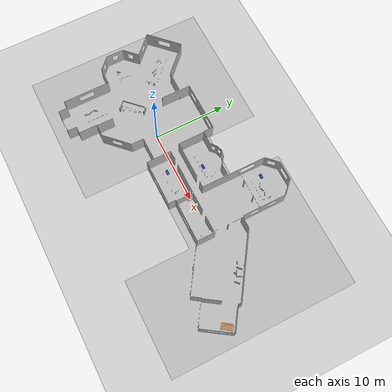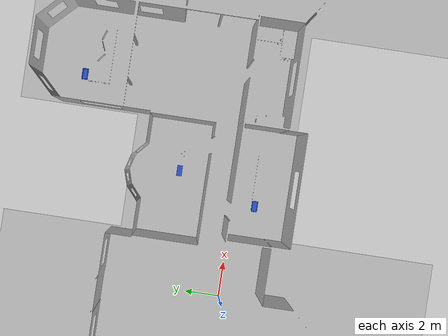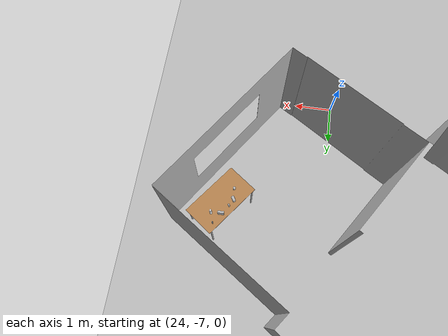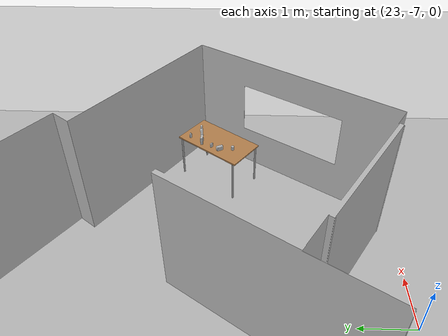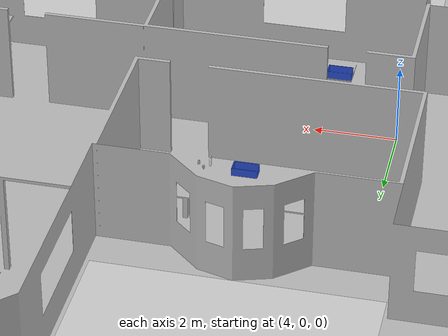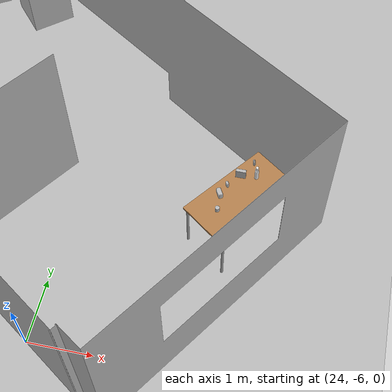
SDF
<sdf version="1.6">
 <world name="default">
  <scene><shadows>0</shadows><ambient>0.4 0.4 0.4 1</ambient><background>0.7 0.7 0.7 1</background></scene>
  <plugin name="ros_link_attacher_plugin" filename="libgazebo_ros_link_attacher.so"/>
  <light name="sun" type="directional">
   <pose>0 0 10 0 -0 0</pose>
   <diffuse>0.8 0.8 0.8 1</diffuse>
   <specular>0.2 0.2 0.2 1</specular>
   <attenuation>
    <range>1000</range>
    <constant>0.9</constant>
    <linear>0.01</linear>
    <quadratic>0.001</quadratic>
   </attenuation>
   <direction>-0.5 0.1 -0.9</direction>
  </light>
  <model name="ground_plane">
   <static>1</static>
   <link name="link">
    <collision name="collision">
     <geometry><plane><normal>0 0 1</normal><size>100 100</size></plane></geometry>
     <surface>
      <contact><collide_bitmask>65535</collide_bitmask></contact>
      <friction><ode><mu>100</mu><mu2>50</mu2></ode></friction>
     </surface>
    </collision>
    <visual name="visual">
     <cast_shadows>0</cast_shadows>
     <geometry><plane><normal>0 0 1</normal><size>100 100</size></plane></geometry>
     <material>
      <script><uri>file://media/materials/scripts/gazebo.material</uri><name>Gazebo/Grey</name></script>
     </material>
    </visual>
   </link>
  </model>
  <model name="office">
   <static>1</static>
   <link name="link">
    <collision name="colision1">
     <geometry><mesh><uri>model://office/meshes/SB_fixed.obj</uri></mesh></geometry>
    </collision>
    <visual name="visual1">
     <geometry><mesh><uri>model://office/meshes/SB_fixed.obj</uri></mesh></geometry>
    </visual>
   </link>
   <pose>0 0 0.08 0 -0 0</pose>
  </model>
  <model name="DropBox2">
   <link name="link_0">
    <pose>0 -0 0 0 0 -1.56873</pose>
    <inertial>
     <mass>1</mass>
     <inertia>
      <ixx>0.166667</ixx>
      <ixy>0</ixy>
      <ixz>0</ixz>
      <iyy>0.166667</iyy>
      <iyz>0</iyz>
      <izz>0.166667</izz>
     </inertia>
    </inertial>
    <visual name="visual">
     <geometry><mesh><uri>model://dropbox/meshes/dropbox.dae</uri><scale>1 1 1</scale></mesh></geometry>
     <material>
      <lighting>1</lighting>
      <script><uri>file://media/materials/scripts/gazebo.material</uri><name>Gazebo/Blue</name></script>
      <ambient>0.3 0.3 0.3 1</ambient>
      <diffuse>0.7 0.7 0.7 1</diffuse>
      <specular>0.01 0.01 0.01 1</specular>
      <emissive>0 0 1 1</emissive>
     </material>
    </visual>
    <collision name="collision">
     <geometry><mesh><uri>model://dropbox/meshes/dropbox.dae</uri><scale>1 1 1</scale></mesh></geometry>
     <surface>
      <friction>
       <ode><mu>1</mu><mu2>1</mu2><fdir1>0 0 0</fdir1><slip1>0</slip1><slip2>0</slip2></ode>
       <torsional>
        <coefficient>1</coefficient>
        <patch_radius>0</patch_radius>
        <surface_radius>0</surface_radius>
        <use_patch_radius>1</use_patch_radius>
        <ode><slip>0</slip></ode>
       </torsional>
      </friction>
      <bounce><restitution_coefficient>0</restitution_coefficient><threshold>1e+06</threshold></bounce>
      <contact>
       <collide_without_contact>0</collide_without_contact>
       <collide_without_contact_bitmask>1</collide_without_contact_bitmask>
       <collide_bitmask>1</collide_bitmask>
       <ode>
        <soft_cfm>0</soft_cfm>
        <soft_erp>0.2</soft_erp>
        <kp>1e+13</kp>
        <kd>1</kd>
        <max_vel>0.01</max_vel>
        <min_depth>0</min_depth>
       </ode>
       <bullet>
        <split_impulse>1</split_impulse>
        <split_impulse_penetration_threshold>-0.01</split_impulse_penetration_threshold>
        <soft_cfm>0</soft_cfm>
        <soft_erp>0.2</soft_erp>
        <kp>1e+13</kp>
        <kd>1</kd>
       </bullet>
      </contact>
     </surface>
    </collision>
   </link>
   <static>1</static>
   <pose>6.99 3.37 0.87 0 -0 0</pose>
  </model>
  <model name="DropBox1">
   <link name="link_0">
    <pose>0 -0 0 0 0 -1.56873</pose>
    <inertial>
     <mass>1</mass>
     <inertia>
      <ixx>0.166667</ixx>
      <ixy>0</ixy>
      <ixz>0</ixz>
      <iyy>0.166667</iyy>
      <iyz>0</iyz>
      <izz>0.166667</izz>
     </inertia>
    </inertial>
    <visual name="visual">
     <geometry><mesh><uri>model://dropbox/meshes/dropbox.dae</uri><scale>1 1 1</scale></mesh></geometry>
     <material>
      <lighting>1</lighting>
      <script><uri>file://media/materials/scripts/gazebo.material</uri><name>Gazebo/Blue</name></script>
      <ambient>0.3 0.3 0.3 1</ambient>
      <diffuse>0.7 0.7 0.7 1</diffuse>
      <specular>0.01 0.01 0.01 1</specular>
      <emissive>0 0 1 1</emissive>
     </material>
    </visual>
    <collision name="collision">
     <geometry><mesh><uri>model://dropbox/meshes/dropbox.dae</uri><scale>1 1 1</scale></mesh></geometry>
     <surface>
      <friction>
       <ode><mu>1</mu><mu2>1</mu2><fdir1>0 0 0</fdir1><slip1>0</slip1><slip2>0</slip2></ode>
       <torsional>
        <coefficient>1</coefficient>
        <patch_radius>0</patch_radius>
        <surface_radius>0</surface_radius>
        <use_patch_radius>1</use_patch_radius>
        <ode><slip>0</slip></ode>
       </torsional>
      </friction>
      <bounce><restitution_coefficient>0</restitution_coefficient><threshold>1e+06</threshold></bounce>
      <contact>
       <collide_without_contact>0</collide_without_contact>
       <collide_without_contact_bitmask>1</collide_without_contact_bitmask>
       <collide_bitmask>1</collide_bitmask>
       <ode>
        <soft_cfm>0</soft_cfm>
        <soft_erp>0.2</soft_erp>
        <kp>1e+13</kp>
        <kd>1</kd>
        <max_vel>0.01</max_vel>
        <min_depth>0</min_depth>
       </ode>
       <bullet>
        <split_impulse>1</split_impulse>
        <split_impulse_penetration_threshold>-0.01</split_impulse_penetration_threshold>
        <soft_cfm>0</soft_cfm>
        <soft_erp>0.2</soft_erp>
        <kp>1e+13</kp>
        <kd>1</kd>
       </bullet>
      </contact>
     </surface>
    </collision>
   </link>
   <static>1</static>
   <pose>5.61 -1.16 0.87 0 -0 0</pose>
  </model>
  <model name="DropBox3">
   <link name="link_0">
    <pose>0 -0 0 0 0 -1.56873</pose>
    <inertial>
     <mass>1</mass>
     <inertia>
      <ixx>0.166667</ixx>
      <ixy>0</ixy>
      <ixz>0</ixz>
      <iyy>0.166667</iyy>
      <iyz>0</iyz>
      <izz>0.166667</izz>
     </inertia>
    </inertial>
    <visual name="visual">
     <geometry><mesh><uri>model://dropbox/meshes/dropbox.dae</uri><scale>1 1 1</scale></mesh></geometry>
     <material>
      <lighting>1</lighting>
      <script><uri>file://media/materials/scripts/gazebo.material</uri><name>Gazebo/Blue</name></script>
      <ambient>0.3 0.3 0.3 1</ambient>
      <diffuse>0.7 0.7 0.7 1</diffuse>
      <specular>0.01 0.01 0.01 1</specular>
      <emissive>0 0 1 1</emissive>
     </material>
    </visual>
    <collision name="collision">
     <geometry><mesh><uri>model://dropbox/meshes/dropbox.dae</uri><scale>1 1 1</scale></mesh></geometry>
     <surface>
      <friction>
       <ode><mu>1</mu><mu2>1</mu2><fdir1>0 0 0</fdir1><slip1>0</slip1><slip2>0</slip2></ode>
       <torsional>
        <coefficient>1</coefficient>
        <patch_radius>0</patch_radius>
        <surface_radius>0</surface_radius>
        <use_patch_radius>1</use_patch_radius>
        <ode><slip>0</slip></ode>
       </torsional>
      </friction>
      <bounce><restitution_coefficient>0</restitution_coefficient><threshold>1e+06</threshold></bounce>
      <contact>
       <collide_without_contact>0</collide_without_contact>
       <collide_without_contact_bitmask>1</collide_without_contact_bitmask>
       <collide_bitmask>1</collide_bitmask>
       <ode>
        <soft_cfm>0</soft_cfm>
        <soft_erp>0.2</soft_erp>
        <kp>1e+13</kp>
        <kd>1</kd>
        <max_vel>0.01</max_vel>
        <min_depth>0</min_depth>
       </ode>
       <bullet>
        <split_impulse>1</split_impulse>
        <split_impulse_penetration_threshold>-0.01</split_impulse_penetration_threshold>
        <soft_cfm>0</soft_cfm>
        <soft_erp>0.2</soft_erp>
        <kp>1e+13</kp>
        <kd>1</kd>
       </bullet>
      </contact>
     </surface>
    </collision>
   </link>
   <static>1</static>
   <pose>11.64 9.51 0.87 0 -0 0</pose>
  </model>
  <model name="table">
   <static>1</static>
   <link name="link">
    <collision name="surface">
     <pose>0 0 1 0 -0 0</pose>
     <geometry><box><size>1.5 0.8 0.03</size></box></geometry>
     <surface><friction><ode><mu>0.6</mu><mu2>0.6</mu2></ode></friction></surface>
    </collision>
    <visual name="visual1">
     <pose>0 0 1 0 -0 0</pose>
     <geometry><box><size>1.5 0.8 0.03</size></box></geometry>
     <material>
      <script><uri>file://media/materials/scripts/gazebo.material</uri><name>Gazebo/Wood</name></script>
     </material>
    </visual>
    <collision name="front_left_leg">
     <pose>0.68 0.38 0.5 0 -0 0</pose>
     <geometry><cylinder><radius>0.02</radius><length>1</length></cylinder></geometry>
    </collision>
    <visual name="front_left_leg">
     <pose>0.68 0.38 0.5 0 -0 0</pose>
     <geometry><cylinder><radius>0.02</radius><length>1</length></cylinder></geometry>
     <material>
      <script><uri>file://media/materials/scripts/gazebo.material</uri><name>Gazebo/Grey</name></script>
     </material>
    </visual>
    <collision name="front_right_leg">
     <pose>0.68 -0.38 0.5 0 -0 0</pose>
     <geometry><cylinder><radius>0.02</radius><length>1</length></cylinder></geometry>
    </collision>
    <visual name="front_right_leg">
     <pose>0.68 -0.38 0.5 0 -0 0</pose>
     <geometry><cylinder><radius>0.02</radius><length>1</length></cylinder></geometry>
     <material>
      <script><uri>file://media/materials/scripts/gazebo.material</uri><name>Gazebo/Grey</name></script>
     </material>
    </visual>
    <collision name="back_right_leg">
     <pose>-0.68 -0.38 0.5 0 -0 0</pose>
     <geometry><cylinder><radius>0.02</radius><length>1</length></cylinder></geometry>
    </collision>
    <visual name="back_right_leg">
     <pose>-0.68 -0.38 0.5 0 -0 0</pose>
     <geometry><cylinder><radius>0.02</radius><length>1</length></cylinder></geometry>
     <material>
      <script><uri>file://media/materials/scripts/gazebo.material</uri><name>Gazebo/Grey</name></script>
     </material>
    </visual>
    <collision name="back_left_leg">
     <pose>-0.68 0.38 0.5 0 -0 0</pose>
     <geometry><cylinder><radius>0.02</radius><length>1</length></cylinder></geometry>
    </collision>
    <visual name="back_left_leg">
     <pose>-0.68 0.38 0.5 0 -0 0</pose>
     <geometry><cylinder><radius>0.02</radius><length>1</length></cylinder></geometry>
     <material>
      <script><uri>file://media/materials/scripts/gazebo.material</uri><name>Gazebo/Grey</name></script>
     </material>
    </visual>
   </link>
   <pose>26.608 -3.569 0 0 -0 0.934</pose>
  </model>
  <gravity>0 0 -9.8</gravity>
  <magnetic_field>6e-06 2.3e-05 -4.2e-05</magnetic_field>
  <atmosphere type="adiabatic"/>
  <physics name="default_physics" default="0" type="ode">
   <max_step_size>0.001</max_step_size>
   <real_time_factor>1</real_time_factor>
   <real_time_update_rate>1000</real_time_update_rate>
  </physics>
  <audio><device>default</device></audio>
  <spherical_coordinates>
   <surface_model>EARTH_WGS84</surface_model>
   <latitude_deg>0</latitude_deg>
   <longitude_deg>0</longitude_deg>
   <elevation>0</elevation>
   <heading_deg>0</heading_deg>
  </spherical_coordinates>
  <model name="coke_can">
   <link name="link">
    <inertial>
     <pose>0 0 0.06 0 -0 0</pose>
     <mass>0.39</mass>
     <inertia>
      <ixx>0.00055575</ixx>
      <ixy>0</ixy>
      <ixz>0</ixz>
      <iyy>0.00055575</iyy>
      <iyz>0</iyz>
      <izz>0.0001755</izz>
     </inertia>
    </inertial>
    <collision name="collision">
     <pose>0.003937 0.004724 -0.18 0 -0 0</pose>
     <geometry><mesh><uri>model://coke_can/meshes/coke_can.dae</uri></mesh></geometry>
     <surface>
      <friction><ode><mu>1</mu><mu2>1</mu2></ode></friction>
      <contact><ode><kp>1e+07</kp><kd>1</kd><min_depth>0.001</min_depth><max_vel>0.1</max_vel></ode></contact>
     </surface>
    </collision>
    <visual name="visual">
     <pose>0.003937 0.004724 -0.18 0 -0 0</pose>
     <geometry><mesh><uri>model://coke_can/meshes/coke_can.dae</uri></mesh></geometry>
    </visual>
   </link>
   <pose>10.82 -1.04507 0.867682 -0.028937 0.000564 6.5e-05</pose>
  </model>
  <model name="water_glass">
   <link name="link">
    <inertial>
     <mass>0.8</mass>
     <inertia><ixx>1</ixx><ixy>0</ixy><ixz>0</ixz><iyy>1</iyy><iyz>0</iyz><izz>1</izz></inertia>
    </inertial>
    <collision name="colision1">
     <geometry><mesh><uri>model://water_glass/meshes/glass.dae</uri></mesh></geometry>
    </collision>
    <visual name="visual1">
     <cast_shadows>0</cast_shadows>
     <geometry><mesh><uri>model://water_glass/meshes/glass.dae</uri></mesh></geometry>
     <material>
      <script><name>Gazebo/GreyTransparent</name><uri>file://media/materials/scripts/gazebo.material</uri></script>
     </material>
    </visual>
   </link>
   <pose>15.22 -1.23 0.870491 4e-06 -1e-06 0</pose>
  </model>
  <model name="adhesive">
   <link name="link">
    <inertial>
     <mass>0.08</mass>
     <inertia><ixx>1</ixx><ixy>0</ixy><ixz>0</ixz><iyy>1</iyy><iyz>0</iyz><izz>1</izz></inertia>
    </inertial>
    <collision name="colision1">
     <geometry><mesh><uri>model://adhesive/meshes/adhesive.dae</uri></mesh></geometry>
    </collision>
    <visual name="visual1">
     <cast_shadows>0</cast_shadows>
     <geometry><mesh><uri>model://adhesive/meshes/adhesive.dae</uri></mesh></geometry>
     <material>
      <script><name>Gazebo/White</name><uri>file://media/materials/scripts/gazebo.material</uri></script>
     </material>
    </visual>
   </link>
   <pose>26.78 -3.21 1.17 5e-06 -6e-06 0</pose>
  </model>
  <model name="glue">
   <link name="glue_link">
    <inertial>
     <mass>0.08</mass>
     <inertia><ixx>1</ixx><ixy>0</ixy><ixz>0</ixz><iyy>1</iyy><iyz>0</iyz><izz>1</izz></inertia>
    </inertial>
    <visual name="glue_visual">
     <material>
      <script>
       <uri>model://glue/materials/scripts</uri>
       <uri>model://glue/materials/textures</uri>
       <name>glue</name>
      </script>
     </material>
     <geometry><mesh><uri>model://glue/meshes/glue.dae</uri></mesh></geometry>
    </visual>
    <collision name="glue_collision">
     <pose>0 0.001 0.067 0 0 -0.95</pose>
     <geometry><box><size>0.06 0.032 0.133</size></box></geometry>
    </collision>
   </link>
   <pose>26.7 -2.984 1.0145 9.8e-05 -4.2e-05 0</pose>
  </model>
  <model name="battery">
   <link name="soap2_link">
    <inertial>
     <mass>0.08</mass>
     <inertia><ixx>1</ixx><ixy>0</ixy><ixz>0</ixz><iyy>1</iyy><iyz>0</iyz><izz>1</izz></inertia>
    </inertial>
    <visual name="soap2_visual">
     <material>
      <script>
       <uri>model://soap2/materials/scripts</uri>
       <uri>model://soap2/materials/textures</uri>
       <name>soap2</name>
      </script>
     </material>
     <geometry><mesh><uri>model://soap2/meshes/soap2.dae</uri></mesh></geometry>
    </visual>
    <collision name="soap2_collision">
     <pose>-0.002 0.00502 0.05 0 0 -1</pose>
     <geometry><box><size>0.065 0.04 0.105</size></box></geometry>
    </collision>
   </link>
   <pose>26.395 -3.45 1.01751 -0.000145 -0.000182 0</pose>
  </model>
  <model name="FPGA_board">
   <link name="soap_link">
    <inertial>
     <mass>0.08</mass>
     <inertia><ixx>1</ixx><ixy>0</ixy><ixz>0</ixz><iyy>1</iyy><iyz>0</iyz><izz>1</izz></inertia>
    </inertial>
    <visual name="soap_visual">
     <material>
      <script>
       <uri>model://soap/materials/scripts</uri>
       <uri>model://soap/materials/textures</uri>
       <name>soap</name>
      </script>
     </material>
     <geometry><mesh><uri>model://soap/meshes/soap.dae</uri></mesh></geometry>
    </visual>
    <collision name="soap_collision">
     <pose>0.02 0.002 0.05 0 0 -1.05</pose>
     <geometry><box><size>0.14 0.065 0.1</size></box></geometry>
    </collision>
   </link>
   <pose>26.29 -3.613 1.01504 0.000438 0.000235 0</pose>
  </model>
  <model name="robot_wheels">
   <link name="link">
    <collision name="colision1">
     <geometry><mesh><uri>model://robot_wheels/meshes/robot_wheels.dae</uri></mesh></geometry>
    </collision>
    <visual name="visual1">
     <cast_shadows>0</cast_shadows>
     <geometry><mesh><uri>model://robot_wheels/meshes/robot_wheels.dae</uri></mesh></geometry>
    </visual>
    <inertial>
     <inertia><ixx>1</ixx><ixy>0</ixy><ixz>0</ixz><iyy>1</iyy><iyz>0</iyz><izz>1</izz></inertia>
     <mass>1</mass>
    </inertial>
   </link>
   <pose>26.33 -3.88014 1.05311 0.003677 -0.000246 2.3e-05</pose>
  </model>
  <model name="eYFi_board">
   <static>0</static>
   <link name="link">
    <collision name="colision1">
     <geometry><mesh><uri>model://eYIFI/meshes/eyifi.obj</uri></mesh></geometry>
    </collision>
    <visual name="visual1">
     <cast_shadows>0</cast_shadows>
     <geometry><mesh><uri>model://eYIFI/meshes/eyifi.obj</uri></mesh></geometry>
    </visual>
    <inertial>
     <inertia><ixx>1</ixx><ixy>0</ixy><ixz>0</ixz><iyy>1</iyy><iyz>0</iyz><izz>1</izz></inertia>
     <mass>1</mass>
    </inertial>
   </link>
   <pose>26.55 -3.2301 1.09003 0.001367 -3.8e-05 -0.000112</pose>
  </model>
  <model name="battery2">
   <link name="soap2_link">
    <inertial>
     <mass>0.08</mass>
     <inertia><ixx>1</ixx><ixy>0</ixy><ixz>0</ixz><iyy>1</iyy><iyz>0</iyz><izz>1</izz></inertia>
    </inertial>
    <visual name="soap2_visual">
     <material>
      <script>
       <uri>model://soap2/materials/scripts</uri>
       <uri>model://soap2/materials/textures</uri>
       <name>soap2</name>
      </script>
     </material>
     <geometry><mesh><uri>model://soap2/meshes/soap2.dae</uri></mesh></geometry>
    </visual>
    <collision name="soap2_collision">
     <pose>-0.002 0.00502 0.05 0 0 -1</pose>
     <geometry><box><size>0.065 0.04 0.105</size></box></geometry>
    </collision>
   </link>
   <pose>7.97128 3.39399 0.872982 -9e-06 -7e-06 0</pose>
  </model>
  <model name="glue2">
   <link name="glue_link">
    <inertial>
     <mass>0.08</mass>
     <inertia><ixx>1</ixx><ixy>0</ixy><ixz>0</ixz><iyy>1</iyy><iyz>0</iyz><izz>1</izz></inertia>
    </inertial>
    <visual name="glue_visual">
     <material>
      <script>
       <uri>model://glue/materials/scripts</uri>
       <uri>model://glue/materials/textures</uri>
       <name>glue</name>
      </script>
     </material>
     <geometry><mesh><uri>model://glue/meshes/glue.dae</uri></mesh></geometry>
    </visual>
    <collision name="glue_collision">
     <pose>0 0.001 0.067 0 0 -0.95</pose>
     <geometry><box><size>0.06 0.032 0.133</size></box></geometry>
    </collision>
   </link>
   <pose>8.10856 3.23928 0.869981 -4e-06 -2e-06 1.053</pose>
  </model>
  <model name="adhesive2">
   <link name="link">
    <inertial>
     <mass>0.08</mass>
     <inertia><ixx>1</ixx><ixy>0</ixy><ixz>0</ixz><iyy>1</iyy><iyz>0</iyz><izz>1</izz></inertia>
    </inertial>
    <collision name="colision1">
     <geometry><mesh><uri>model://adhesive/meshes/adhesive.dae</uri></mesh></geometry>
    </collision>
    <visual name="visual1">
     <cast_shadows>0</cast_shadows>
     <geometry><mesh><uri>model://adhesive/meshes/adhesive.dae</uri></mesh></geometry>
     <material>
      <script><name>Gazebo/White</name><uri>file://media/materials/scripts/gazebo.material</uri></script>
     </material>
    </visual>
   </link>
   <pose>7.83934 3.23991 1.02556 0.000747 -0.003794 0.000314</pose>
  </model>
 </world>
</sdf>
